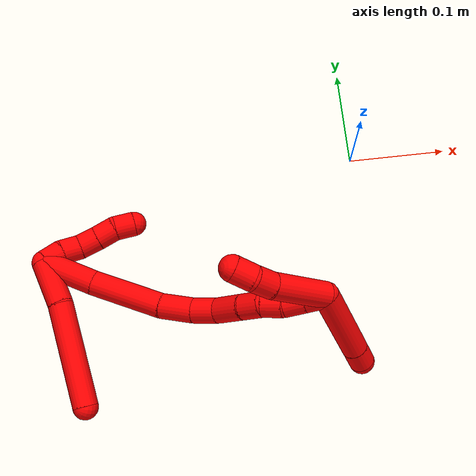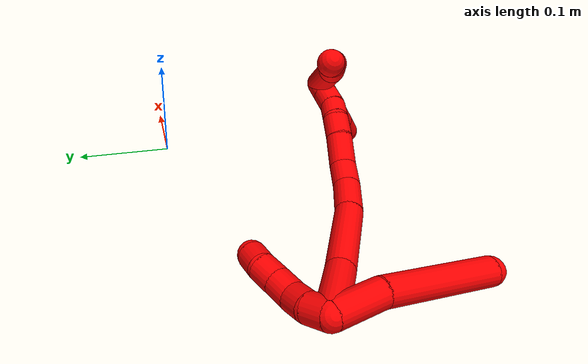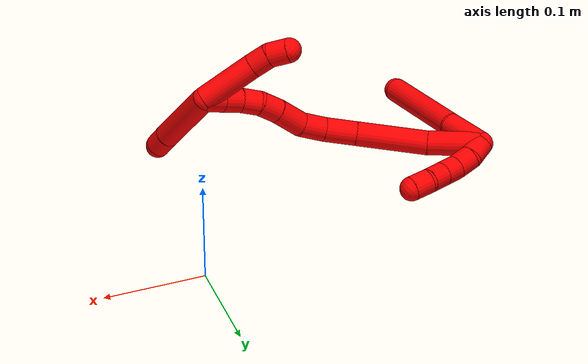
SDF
<sdf version="1.7">
 <world name="default">
  <model name="photoneo_s_sensor">
   <static>1</static>
   <pose>0 0 2 1.57079 1.57079 3.14159</pose>
   <link name="link">
    <inertial><mass>0.1</mass></inertial>
    <sensor name="sensor" type="depth">
     <update_rate>30</update_rate>
     <camera>
      <horizontal_fov>1.22</horizontal_fov>
      <image><width>1920</width><height>1200</height><format>B8G8R8</format></image>
      <clip><near>0.1</near><far>4</far></clip>
      <depth_camera><output>points</output></depth_camera>
     </camera>
     <plugin name="camera_plugin" filename="libgazebo_ros_depth_camera.so">
      <baseline>0.2</baseline>
      <alwaysOn>1</alwaysOn>
      <updateRate>0.0</updateRate>
      <cameraName>camera_ir</cameraName>
      <imageTopicName>/camera/color/image_raw</imageTopicName>
      <cameraInfoTopicName>/camera/color/camera_info</cameraInfoTopicName>
      <depthImageTopicName>/camera/depth/image_raw</depthImageTopicName>
      <depthImageCameraInfoTopicName>/camera/depth/camera_info</depthImageCameraInfoTopicName>
      <pointCloudTopicName>/camera/depth/points</pointCloudTopicName>
      <frameName>fr_optical</frameName>
      <pointCloudCutoff>0.1</pointCloudCutoff>
      <pointCloudCutoffMax>2.0</pointCloudCutoffMax>
      <distortionK1>0</distortionK1>
      <distortionK2>0</distortionK2>
      <distortionK3>0</distortionK3>
      <distortionT1>0</distortionT1>
      <distortionT2>0</distortionT2>
      <CxPrime>0</CxPrime>
      <Cx>0</Cx>
      <Cy>0</Cy>
      <focalLength>0</focalLength>
      <hackBaseline>0</hackBaseline>
     </plugin>
    </sensor>
   </link>
  </model>
  <model name="bin">
   <static>1</static>
   <link name="bottom">
    <collision name="collision-bottom">
     <pose>0 0 -0.01 0 -0 0</pose>
     <geometry><box><size>0.8 0.6 0.02</size></box></geometry>
     <surface>
      <friction><ode><mu>100</mu><mu2>100</mu2></ode></friction>
      <contact><collide_bitmask>65535</collide_bitmask></contact>
     </surface>
    </collision>
   </link>
   <link name="west_wall">
    <collision name="collision-west_wall">
     <pose>-0.41 0 0.1 0 -0 0</pose>
     <geometry><box><size>0.02 0.6 0.2</size></box></geometry>
     <surface>
      <friction><ode><mu>100</mu><mu2>100</mu2></ode></friction>
      <contact><collide_bitmask>65535</collide_bitmask></contact>
     </surface>
    </collision>
   </link>
   <link name="east_wall">
    <collision name="collision-east_wall">
     <pose>0.41 0 0.1 0 -0 0</pose>
     <geometry><box><size>0.02 0.6 0.2</size></box></geometry>
     <surface>
      <friction><ode><mu>100</mu><mu2>100</mu2></ode></friction>
      <contact><collide_bitmask>65535</collide_bitmask></contact>
     </surface>
    </collision>
   </link>
   <link name="south_wall">
    <collision name="collision-south_wall">
     <pose>0 -0.31 0.1 0 -0 0</pose>
     <geometry><box><size>0.8 0.02 0.2</size></box></geometry>
     <surface>
      <friction><ode><mu>100</mu><mu2>100</mu2></ode></friction>
      <contact><collide_bitmask>65535</collide_bitmask></contact>
     </surface>
    </collision>
   </link>
   <link name="north_wall">
    <collision name="collision-north_wall">
     <pose>0 0.31 0.1 0 -0 0</pose>
     <geometry><box><size>0.8 0.02 0.2</size></box></geometry>
     <surface>
      <friction><ode><mu>100</mu><mu2>100</mu2></ode></friction>
      <contact><collide_bitmask>65535</collide_bitmask></contact>
     </surface>
    </collision>
   </link>
  </model>
  <model name="2">
   <static>0</static>
   <link name="2">
    <collision name="collision-cylinder-e_1_2_8">
     <pose>0.01289 -0.018423 -0.005665 1.86912 0.589466 0.779825</pose>
     <geometry><cylinder><radius>0.0125</radius><length>0.046374</length></cylinder></geometry>
     <surface>
      <friction><ode><mu>1.16</mu><mu2>1.16</mu2><slip1>0</slip1><slip2>0</slip2></ode></friction>
      <contact><ode><kp>1e+06</kp><kd>1</kd><max_vel>0</max_vel><min_depth>0.001</min_depth></ode></contact>
     </surface>
    </collision>
    <visual name="visual-cylinder-e_1_2_8">
     <pose>0.01289 -0.018423 -0.005665 1.86912 0.589466 0.779825</pose>
     <geometry><cylinder><radius>0.0125</radius><length>0.046374</length></cylinder></geometry>
     <material><ambient>1 0 0 1</ambient></material>
    </visual>
    <collision name="collision-cylinder-e_2_8_6">
     <pose>0.046839 -0.082874 -0.022398 1.80678 0.418548 0.526507</pose>
     <geometry><cylinder><radius>0.0125</radius><length>0.103626</length></cylinder></geometry>
     <surface>
      <friction><ode><mu>1.16</mu><mu2>1.16</mu2><slip1>0</slip1><slip2>0</slip2></ode></friction>
      <contact><ode><kp>1e+06</kp><kd>1</kd><max_vel>0</max_vel><min_depth>0.001</min_depth></ode></contact>
     </surface>
    </collision>
    <visual name="visual-cylinder-e_2_8_6">
     <pose>0.046839 -0.082874 -0.022398 1.80678 0.418548 0.526507</pose>
     <geometry><cylinder><radius>0.0125</radius><length>0.103626</length></cylinder></geometry>
     <material><ambient>1 0 0 1</ambient></material>
    </visual>
    <collision name="collision-cylinder-e_1_2_9">
     <pose>0.000652 0.006218 -0.007804 -2.46883 0.065203 -0.185998</pose>
     <geometry><cylinder><radius>0.0125</radius><length>0.02</length></cylinder></geometry>
     <surface>
      <friction><ode><mu>1.16</mu><mu2>1.16</mu2><slip1>0</slip1><slip2>0</slip2></ode></friction>
      <contact><ode><kp>1e+06</kp><kd>1</kd><max_vel>0</max_vel><min_depth>0.001</min_depth></ode></contact>
     </surface>
    </collision>
    <visual name="visual-cylinder-e_1_2_9">
     <pose>0.000652 0.006218 -0.007804 -2.46883 0.065203 -0.185998</pose>
     <geometry><cylinder><radius>0.0125</radius><length>0.02</length></cylinder></geometry>
     <material><ambient>1 0 0 1</ambient></material>
    </visual>
    <collision name="collision-cylinder-e_2_9_10">
     <pose>0.004005 0.01654 -0.024319 -2.70128 0.273566 -1.10286</pose>
     <geometry><cylinder><radius>0.0125</radius><length>0.02</length></cylinder></geometry>
     <surface>
      <friction><ode><mu>1.16</mu><mu2>1.16</mu2><slip1>0</slip1><slip2>0</slip2></ode></friction>
      <contact><ode><kp>1e+06</kp><kd>1</kd><max_vel>0</max_vel><min_depth>0.001</min_depth></ode></contact>
     </surface>
    </collision>
    <visual name="visual-cylinder-e_2_9_10">
     <pose>0.004005 0.01654 -0.024319 -2.70128 0.273566 -1.10286</pose>
     <geometry><cylinder><radius>0.0125</radius><length>0.02</length></cylinder></geometry>
     <material><ambient>1 0 0 1</ambient></material>
    </visual>
    <collision name="collision-cylinder-e_3_10_11">
     <pose>0.010986 0.026599 -0.039828 -2.4223 0.442233 -1.07768</pose>
     <geometry><cylinder><radius>0.0125</radius><length>0.02</length></cylinder></geometry>
     <surface>
      <friction><ode><mu>1.16</mu><mu2>1.16</mu2><slip1>0</slip1><slip2>0</slip2></ode></friction>
      <contact><ode><kp>1e+06</kp><kd>1</kd><max_vel>0</max_vel><min_depth>0.001</min_depth></ode></contact>
     </surface>
    </collision>
    <visual name="visual-cylinder-e_3_10_11">
     <pose>0.010986 0.026599 -0.039828 -2.4223 0.442233 -1.07768</pose>
     <geometry><cylinder><radius>0.0125</radius><length>0.02</length></cylinder></geometry>
     <material><ambient>1 0 0 1</ambient></material>
    </visual>
    <collision name="collision-cylinder-e_4_11_12">
     <pose>0.01955 0.038903 -0.053055 -2.36231 0.442764 -1.00277</pose>
     <geometry><cylinder><radius>0.0125</radius><length>0.02</length></cylinder></geometry>
     <surface>
      <friction><ode><mu>1.16</mu><mu2>1.16</mu2><slip1>0</slip1><slip2>0</slip2></ode></friction>
      <contact><ode><kp>1e+06</kp><kd>1</kd><max_vel>0</max_vel><min_depth>0.001</min_depth></ode></contact>
     </surface>
    </collision>
    <visual name="visual-cylinder-e_4_11_12">
     <pose>0.01955 0.038903 -0.053055 -2.36231 0.442764 -1.00277</pose>
     <geometry><cylinder><radius>0.0125</radius><length>0.02</length></cylinder></geometry>
     <material><ambient>1 0 0 1</ambient></material>
    </visual>
    <collision name="collision-cylinder-e_5_12_5">
     <pose>0.028159 0.049148 -0.067614 -2.69488 0.447271 -1.57209</pose>
     <geometry><cylinder><radius>0.0125</radius><length>0.02</length></cylinder></geometry>
     <surface>
      <friction><ode><mu>1.16</mu><mu2>1.16</mu2><slip1>0</slip1><slip2>0</slip2></ode></friction>
      <contact><ode><kp>1e+06</kp><kd>1</kd><max_vel>0</max_vel><min_depth>0.001</min_depth></ode></contact>
     </surface>
    </collision>
    <visual name="visual-cylinder-e_5_12_5">
     <pose>0.028159 0.049148 -0.067614 -2.69488 0.447271 -1.57209</pose>
     <geometry><cylinder><radius>0.0125</radius><length>0.02</length></cylinder></geometry>
     <material><ambient>1 0 0 1</ambient></material>
    </visual>
    <collision name="collision-cylinder-e_1_2_13">
     <pose>0.01806 -0.005789 -0.019329 2.85058 0.730063 2.40926</pose>
     <geometry><cylinder><radius>0.0125</radius><length>0.054159</length></cylinder></geometry>
     <surface>
      <friction><ode><mu>1.16</mu><mu2>1.16</mu2><slip1>0</slip1><slip2>0</slip2></ode></friction>
      <contact><ode><kp>1e+06</kp><kd>1</kd><max_vel>0</max_vel><min_depth>0.001</min_depth></ode></contact>
     </surface>
    </collision>
    <visual name="visual-cylinder-e_1_2_13">
     <pose>0.01806 -0.005789 -0.019329 2.85058 0.730063 2.40926</pose>
     <geometry><cylinder><radius>0.0125</radius><length>0.054159</length></cylinder></geometry>
     <material><ambient>1 0 0 1</ambient></material>
    </visual>
    <collision name="collision-cylinder-e_2_13_14">
     <pose>0.064548 -0.016688 -0.061468 2.92123 0.882662 2.68153</pose>
     <geometry><cylinder><radius>0.0125</radius><length>0.073607</length></cylinder></geometry>
     <surface>
      <friction><ode><mu>1.16</mu><mu2>1.16</mu2><slip1>0</slip1><slip2>0</slip2></ode></friction>
      <contact><ode><kp>1e+06</kp><kd>1</kd><max_vel>0</max_vel><min_depth>0.001</min_depth></ode></contact>
     </surface>
    </collision>
    <visual name="visual-cylinder-e_2_13_14">
     <pose>0.064548 -0.016688 -0.061468 2.92123 0.882662 2.68153</pose>
     <geometry><cylinder><radius>0.0125</radius><length>0.073607</length></cylinder></geometry>
     <material><ambient>1 0 0 1</ambient></material>
    </visual>
    <collision name="collision-cylinder-e_3_14_15">
     <pose>0.106571 -0.021073 -0.094117 -3.06811 0.942954 -2.99765</pose>
     <geometry><cylinder><radius>0.0125</radius><length>0.033598</length></cylinder></geometry>
     <surface>
      <friction><ode><mu>1.16</mu><mu2>1.16</mu2><slip1>0</slip1><slip2>0</slip2></ode></friction>
      <contact><ode><kp>1e+06</kp><kd>1</kd><max_vel>0</max_vel><min_depth>0.001</min_depth></ode></contact>
     </surface>
    </collision>
    <visual name="visual-cylinder-e_3_14_15">
     <pose>0.106571 -0.021073 -0.094117 -3.06811 0.942954 -2.99765</pose>
     <geometry><cylinder><radius>0.0125</radius><length>0.033598</length></cylinder></geometry>
     <material><ambient>1 0 0 1</ambient></material>
    </visual>
    <collision name="collision-cylinder-e_4_15_16">
     <pose>0.131028 -0.018019 -0.110101 -2.77915 1.02685 -2.51321</pose>
     <geometry><cylinder><radius>0.0125</radius><length>0.025386</length></cylinder></geometry>
     <surface>
      <friction><ode><mu>1.16</mu><mu2>1.16</mu2><slip1>0</slip1><slip2>0</slip2></ode></friction>
      <contact><ode><kp>1e+06</kp><kd>1</kd><max_vel>0</max_vel><min_depth>0.001</min_depth></ode></contact>
     </surface>
    </collision>
    <visual name="visual-cylinder-e_4_15_16">
     <pose>0.131028 -0.018019 -0.110101 -2.77915 1.02685 -2.51321</pose>
     <geometry><cylinder><radius>0.0125</radius><length>0.025386</length></cylinder></geometry>
     <material><ambient>1 0 0 1</ambient></material>
    </visual>
    <collision name="collision-cylinder-e_5_16_17">
     <pose>0.156436 -0.011328 -0.118911 -2.11975 1.23281 -1.80288</pose>
     <geometry><cylinder><radius>0.0125</radius><length>0.030839</length></cylinder></geometry>
     <surface>
      <friction><ode><mu>1.16</mu><mu2>1.16</mu2><slip1>0</slip1><slip2>0</slip2></ode></friction>
      <contact><ode><kp>1e+06</kp><kd>1</kd><max_vel>0</max_vel><min_depth>0.001</min_depth></ode></contact>
     </surface>
    </collision>
    <visual name="visual-cylinder-e_5_16_17">
     <pose>0.156436 -0.011328 -0.118911 -2.11975 1.23281 -1.80288</pose>
     <geometry><cylinder><radius>0.0125</radius><length>0.030839</length></cylinder></geometry>
     <material><ambient>1 0 0 1</ambient></material>
    </visual>
    <collision name="collision-cylinder-e_6_17_18">
     <pose>0.180973 -0.003749 -0.124605 -2.32566 1.15447 -1.96971</pose>
     <geometry><cylinder><radius>0.0125</radius><length>0.021845</length></cylinder></geometry>
     <surface>
      <friction><ode><mu>1.16</mu><mu2>1.16</mu2><slip1>0</slip1><slip2>0</slip2></ode></friction>
      <contact><ode><kp>1e+06</kp><kd>1</kd><max_vel>0</max_vel><min_depth>0.001</min_depth></ode></contact>
     </surface>
    </collision>
    <visual name="visual-cylinder-e_6_17_18">
     <pose>0.180973 -0.003749 -0.124605 -2.32566 1.15447 -1.96971</pose>
     <geometry><cylinder><radius>0.0125</radius><length>0.021845</length></cylinder></geometry>
     <material><ambient>1 0 0 1</ambient></material>
    </visual>
    <collision name="collision-cylinder-e_7_18_19">
     <pose>0.19929 0.001146 -0.132999 -2.83854 0.976876 -2.58195</pose>
     <geometry><cylinder><radius>0.0125</radius><length>0.020097</length></cylinder></geometry>
     <surface>
      <friction><ode><mu>1.16</mu><mu2>1.16</mu2><slip1>0</slip1><slip2>0</slip2></ode></friction>
      <contact><ode><kp>1e+06</kp><kd>1</kd><max_vel>0</max_vel><min_depth>0.001</min_depth></ode></contact>
     </surface>
    </collision>
    <visual name="visual-cylinder-e_7_18_19">
     <pose>0.19929 0.001146 -0.132999 -2.83854 0.976876 -2.58195</pose>
     <geometry><cylinder><radius>0.0125</radius><length>0.020097</length></cylinder></geometry>
     <material><ambient>1 0 0 1</ambient></material>
    </visual>
    <collision name="collision-cylinder-e_8_19_20">
     <pose>0.215155 0.00671 -0.144034 -2.54065 0.831544 -1.91772</pose>
     <geometry><cylinder><radius>0.0125</radius><length>0.020399</length></cylinder></geometry>
     <surface>
      <friction><ode><mu>1.16</mu><mu2>1.16</mu2><slip1>0</slip1><slip2>0</slip2></ode></friction>
      <contact><ode><kp>1e+06</kp><kd>1</kd><max_vel>0</max_vel><min_depth>0.001</min_depth></ode></contact>
     </surface>
    </collision>
    <visual name="visual-cylinder-e_8_19_20">
     <pose>0.215155 0.00671 -0.144034 -2.54065 0.831544 -1.91772</pose>
     <geometry><cylinder><radius>0.0125</radius><length>0.020399</length></cylinder></geometry>
     <material><ambient>1 0 0 1</ambient></material>
    </visual>
    <collision name="collision-cylinder-e_9_20_1">
     <pose>0.230149 0.014481 -0.155178 -2.5246 0.837687 -1.89906</pose>
     <geometry><cylinder><radius>0.0125</radius><length>0.020069</length></cylinder></geometry>
     <surface>
      <friction><ode><mu>1.16</mu><mu2>1.16</mu2><slip1>0</slip1><slip2>0</slip2></ode></friction>
      <contact><ode><kp>1e+06</kp><kd>1</kd><max_vel>0</max_vel><min_depth>0.001</min_depth></ode></contact>
     </surface>
    </collision>
    <visual name="visual-cylinder-e_9_20_1">
     <pose>0.230149 0.014481 -0.155178 -2.5246 0.837687 -1.89906</pose>
     <geometry><cylinder><radius>0.0125</radius><length>0.020069</length></cylinder></geometry>
     <material><ambient>1 0 0 1</ambient></material>
    </visual>
    <collision name="collision-cylinder-e_1_1_21">
     <pose>0.232653 -0.005774 -0.191178 2.47244 -0.126596 -0.360676</pose>
     <geometry><cylinder><radius>0.0125</radius><length>0.078457</length></cylinder></geometry>
     <surface>
      <friction><ode><mu>1.16</mu><mu2>1.16</mu2><slip1>0</slip1><slip2>0</slip2></ode></friction>
      <contact><ode><kp>1e+06</kp><kd>1</kd><max_vel>0</max_vel><min_depth>0.001</min_depth></ode></contact>
     </surface>
    </collision>
    <visual name="visual-cylinder-e_1_1_21">
     <pose>0.232653 -0.005774 -0.191178 2.47244 -0.126596 -0.360676</pose>
     <geometry><cylinder><radius>0.0125</radius><length>0.078457</length></cylinder></geometry>
     <material><ambient>1 0 0 1</ambient></material>
    </visual>
    <collision name="collision-cylinder-e_2_21_4">
     <pose>0.226075 -0.036436 -0.230117 2.48234 -0.151426 -0.436414</pose>
     <geometry><cylinder><radius>0.0125</radius><length>0.021543</length></cylinder></geometry>
     <surface>
      <friction><ode><mu>1.16</mu><mu2>1.16</mu2><slip1>0</slip1><slip2>0</slip2></ode></friction>
      <contact><ode><kp>1e+06</kp><kd>1</kd><max_vel>0</max_vel><min_depth>0.001</min_depth></ode></contact>
     </surface>
    </collision>
    <visual name="visual-cylinder-e_2_21_4">
     <pose>0.226075 -0.036436 -0.230117 2.48234 -0.151426 -0.436414</pose>
     <geometry><cylinder><radius>0.0125</radius><length>0.021543</length></cylinder></geometry>
     <material><ambient>1 0 0 1</ambient></material>
    </visual>
    <collision name="collision-cylinder-e_1_1_22">
     <pose>0.232633 0.019221 -0.131613 -0.029426 -0.169492 0.0025</pose>
     <geometry><cylinder><radius>0.0125</radius><length>0.058956</length></cylinder></geometry>
     <surface>
      <friction><ode><mu>1.16</mu><mu2>1.16</mu2><slip1>0</slip1><slip2>0</slip2></ode></friction>
      <contact><ode><kp>1e+06</kp><kd>1</kd><max_vel>0</max_vel><min_depth>0.001</min_depth></ode></contact>
     </surface>
    </collision>
    <visual name="visual-cylinder-e_1_1_22">
     <pose>0.232633 0.019221 -0.131613 -0.029426 -0.169492 0.0025</pose>
     <geometry><cylinder><radius>0.0125</radius><length>0.058956</length></cylinder></geometry>
     <material><ambient>1 0 0 1</ambient></material>
    </visual>
    <collision name="collision-cylinder-e_2_22_23">
     <pose>0.225956 0.022167 -0.09264 -0.207587 -0.166462 0.01738</pose>
     <geometry><cylinder><radius>0.0125</radius><length>0.020579</length></cylinder></geometry>
     <surface>
      <friction><ode><mu>1.16</mu><mu2>1.16</mu2><slip1>0</slip1><slip2>0</slip2></ode></friction>
      <contact><ode><kp>1e+06</kp><kd>1</kd><max_vel>0</max_vel><min_depth>0.001</min_depth></ode></contact>
     </surface>
    </collision>
    <visual name="visual-cylinder-e_2_22_23">
     <pose>0.225956 0.022167 -0.09264 -0.207587 -0.166462 0.01738</pose>
     <geometry><cylinder><radius>0.0125</radius><length>0.020579</length></cylinder></geometry>
     <material><ambient>1 0 0 1</ambient></material>
    </visual>
    <collision name="collision-cylinder-e_3_23_3">
     <pose>0.219727 0.027012 -0.073956 -0.304782 -0.458013 0.071568</pose>
     <geometry><cylinder><radius>0.0125</radius><length>0.020465</length></cylinder></geometry>
     <surface>
      <friction><ode><mu>1.16</mu><mu2>1.16</mu2><slip1>0</slip1><slip2>0</slip2></ode></friction>
      <contact><ode><kp>1e+06</kp><kd>1</kd><max_vel>0</max_vel><min_depth>0.001</min_depth></ode></contact>
     </surface>
    </collision>
    <visual name="visual-cylinder-e_3_23_3">
     <pose>0.219727 0.027012 -0.073956 -0.304782 -0.458013 0.071568</pose>
     <geometry><cylinder><radius>0.0125</radius><length>0.020465</length></cylinder></geometry>
     <material><ambient>1 0 0 1</ambient></material>
    </visual>
    <collision name="collision-sphere-3">
     <pose>0.215202 0.029767 -0.065201 0 -0 0</pose>
     <geometry><sphere><radius>0.0125</radius></sphere></geometry>
     <surface>
      <friction><ode><mu>1.16</mu><mu2>1.16</mu2><slip1>0</slip1><slip2>0</slip2></ode></friction>
      <contact><ode><kp>1e+06</kp><kd>1</kd><max_vel>0</max_vel><min_depth>0.001</min_depth></ode></contact>
     </surface>
    </collision>
    <visual name="visual-sphere-3">
     <pose>0.215202 0.029767 -0.065201 0 -0 0</pose>
     <geometry><sphere><radius>0.0125</radius></sphere></geometry>
     <material><ambient>1 0 0 1</ambient></material>
    </visual>
    <collision name="collision-sphere-23">
     <pose>0.224251 0.024258 -0.082711 0 -0 0</pose>
     <geometry><sphere><radius>0.0125</radius></sphere></geometry>
     <surface>
      <friction><ode><mu>1.16</mu><mu2>1.16</mu2><slip1>0</slip1><slip2>0</slip2></ode></friction>
      <contact><ode><kp>1e+06</kp><kd>1</kd><max_vel>0</max_vel><min_depth>0.001</min_depth></ode></contact>
     </surface>
    </collision>
    <visual name="visual-sphere-23">
     <pose>0.224251 0.024258 -0.082711 0 -0 0</pose>
     <geometry><sphere><radius>0.0125</radius></sphere></geometry>
     <material><ambient>1 0 0 1</ambient></material>
    </visual>
    <collision name="collision-sphere-22">
     <pose>0.227661 0.020075 -0.10257 0 -0 0</pose>
     <geometry><sphere><radius>0.0125</radius></sphere></geometry>
     <surface>
      <friction><ode><mu>1.16</mu><mu2>1.16</mu2><slip1>0</slip1><slip2>0</slip2></ode></friction>
      <contact><ode><kp>1e+06</kp><kd>1</kd><max_vel>0</max_vel><min_depth>0.001</min_depth></ode></contact>
     </surface>
    </collision>
    <visual name="visual-sphere-22">
     <pose>0.227661 0.020075 -0.10257 0 -0 0</pose>
     <geometry><sphere><radius>0.0125</radius></sphere></geometry>
     <material><ambient>1 0 0 1</ambient></material>
    </visual>
    <collision name="collision-sphere-4">
     <pose>0.22445 -0.042958 -0.238534 0 -0 0</pose>
     <geometry><sphere><radius>0.0125</radius></sphere></geometry>
     <surface>
      <friction><ode><mu>1.16</mu><mu2>1.16</mu2><slip1>0</slip1><slip2>0</slip2></ode></friction>
      <contact><ode><kp>1e+06</kp><kd>1</kd><max_vel>0</max_vel><min_depth>0.001</min_depth></ode></contact>
     </surface>
    </collision>
    <visual name="visual-sphere-4">
     <pose>0.22445 -0.042958 -0.238534 0 -0 0</pose>
     <geometry><sphere><radius>0.0125</radius></sphere></geometry>
     <material><ambient>1 0 0 1</ambient></material>
    </visual>
    <collision name="collision-sphere-21">
     <pose>0.2277 -0.029914 -0.2217 0 -0 0</pose>
     <geometry><sphere><radius>0.0125</radius></sphere></geometry>
     <surface>
      <friction><ode><mu>1.16</mu><mu2>1.16</mu2><slip1>0</slip1><slip2>0</slip2></ode></friction>
      <contact><ode><kp>1e+06</kp><kd>1</kd><max_vel>0</max_vel><min_depth>0.001</min_depth></ode></contact>
     </surface>
    </collision>
    <visual name="visual-sphere-21">
     <pose>0.2277 -0.029914 -0.2217 0 -0 0</pose>
     <geometry><sphere><radius>0.0125</radius></sphere></geometry>
     <material><ambient>1 0 0 1</ambient></material>
    </visual>
    <collision name="collision-sphere-1">
     <pose>0.237606 0.018366 -0.160655 0 -0 0</pose>
     <geometry><sphere><radius>0.0125</radius></sphere></geometry>
     <surface>
      <friction><ode><mu>1.16</mu><mu2>1.16</mu2><slip1>0</slip1><slip2>0</slip2></ode></friction>
      <contact><ode><kp>1e+06</kp><kd>1</kd><max_vel>0</max_vel><min_depth>0.001</min_depth></ode></contact>
     </surface>
    </collision>
    <visual name="visual-sphere-1">
     <pose>0.237606 0.018366 -0.160655 0 -0 0</pose>
     <geometry><sphere><radius>0.0125</radius></sphere></geometry>
     <material><ambient>1 0 0 1</ambient></material>
    </visual>
    <collision name="collision-sphere-11">
     <pose>0.015266 0.032553 -0.046627 0 -0 0</pose>
     <geometry><sphere><radius>0.0125</radius></sphere></geometry>
     <surface>
      <friction><ode><mu>1.16</mu><mu2>1.16</mu2><slip1>0</slip1><slip2>0</slip2></ode></friction>
      <contact><ode><kp>1e+06</kp><kd>1</kd><max_vel>0</max_vel><min_depth>0.001</min_depth></ode></contact>
     </surface>
    </collision>
    <visual name="visual-sphere-11">
     <pose>0.015266 0.032553 -0.046627 0 -0 0</pose>
     <geometry><sphere><radius>0.0125</radius></sphere></geometry>
     <material><ambient>1 0 0 1</ambient></material>
    </visual>
    <collision name="collision-sphere-10">
     <pose>0.006706 0.020644 -0.033028 0 -0 0</pose>
     <geometry><sphere><radius>0.0125</radius></sphere></geometry>
     <surface>
      <friction><ode><mu>1.16</mu><mu2>1.16</mu2><slip1>0</slip1><slip2>0</slip2></ode></friction>
      <contact><ode><kp>1e+06</kp><kd>1</kd><max_vel>0</max_vel><min_depth>0.001</min_depth></ode></contact>
     </surface>
    </collision>
    <visual name="visual-sphere-10">
     <pose>0.006706 0.020644 -0.033028 0 -0 0</pose>
     <geometry><sphere><radius>0.0125</radius></sphere></geometry>
     <material><ambient>1 0 0 1</ambient></material>
    </visual>
    <collision name="collision-sphere-6">
     <pose>0.067897 -0.128902 -0.033466 0 -0 0</pose>
     <geometry><sphere><radius>0.0125</radius></sphere></geometry>
     <surface>
      <friction><ode><mu>1.16</mu><mu2>1.16</mu2><slip1>0</slip1><slip2>0</slip2></ode></friction>
      <contact><ode><kp>1e+06</kp><kd>1</kd><max_vel>0</max_vel><min_depth>0.001</min_depth></ode></contact>
     </surface>
    </collision>
    <visual name="visual-sphere-6">
     <pose>0.067897 -0.128902 -0.033466 0 -0 0</pose>
     <geometry><sphere><radius>0.0125</radius></sphere></geometry>
     <material><ambient>1 0 0 1</ambient></material>
    </visual>
    <collision name="collision-sphere-9">
     <pose>0.001303 0.012436 -0.015609 0 -0 0</pose>
     <geometry><sphere><radius>0.0125</radius></sphere></geometry>
     <surface>
      <friction><ode><mu>1.16</mu><mu2>1.16</mu2><slip1>0</slip1><slip2>0</slip2></ode></friction>
      <contact><ode><kp>1e+06</kp><kd>1</kd><max_vel>0</max_vel><min_depth>0.001</min_depth></ode></contact>
     </surface>
    </collision>
    <visual name="visual-sphere-9">
     <pose>0.001303 0.012436 -0.015609 0 -0 0</pose>
     <geometry><sphere><radius>0.0125</radius></sphere></geometry>
     <material><ambient>1 0 0 1</ambient></material>
    </visual>
    <collision name="collision-sphere-2">
     <geometry><sphere><radius>0.0125</radius></sphere></geometry>
     <surface>
      <friction><ode><mu>1.16</mu><mu2>1.16</mu2><slip1>0</slip1><slip2>0</slip2></ode></friction>
      <contact><ode><kp>1e+06</kp><kd>1</kd><max_vel>0</max_vel><min_depth>0.001</min_depth></ode></contact>
     </surface>
    </collision>
    <visual name="visual-sphere-2">
     <geometry><sphere><radius>0.0125</radius></sphere></geometry>
     <material><ambient>1 0 0 1</ambient></material>
    </visual>
    <collision name="collision-sphere-19">
     <pose>0.207618 0.002824 -0.138366 0 -0 0</pose>
     <geometry><sphere><radius>0.0125</radius></sphere></geometry>
     <surface>
      <friction><ode><mu>1.16</mu><mu2>1.16</mu2><slip1>0</slip1><slip2>0</slip2></ode></friction>
      <contact><ode><kp>1e+06</kp><kd>1</kd><max_vel>0</max_vel><min_depth>0.001</min_depth></ode></contact>
     </surface>
    </collision>
    <visual name="visual-sphere-19">
     <pose>0.207618 0.002824 -0.138366 0 -0 0</pose>
     <geometry><sphere><radius>0.0125</radius></sphere></geometry>
     <material><ambient>1 0 0 1</ambient></material>
    </visual>
    <collision name="collision-sphere-8">
     <pose>0.02578 -0.036845 -0.01133 0 -0 0</pose>
     <geometry><sphere><radius>0.0125</radius></sphere></geometry>
     <surface>
      <friction><ode><mu>1.16</mu><mu2>1.16</mu2><slip1>0</slip1><slip2>0</slip2></ode></friction>
      <contact><ode><kp>1e+06</kp><kd>1</kd><max_vel>0</max_vel><min_depth>0.001</min_depth></ode></contact>
     </surface>
    </collision>
    <visual name="visual-sphere-8">
     <pose>0.02578 -0.036845 -0.01133 0 -0 0</pose>
     <geometry><sphere><radius>0.0125</radius></sphere></geometry>
     <material><ambient>1 0 0 1</ambient></material>
    </visual>
    <collision name="collision-sphere-12">
     <pose>0.023834 0.045253 -0.059483 0 -0 0</pose>
     <geometry><sphere><radius>0.0125</radius></sphere></geometry>
     <surface>
      <friction><ode><mu>1.16</mu><mu2>1.16</mu2><slip1>0</slip1><slip2>0</slip2></ode></friction>
      <contact><ode><kp>1e+06</kp><kd>1</kd><max_vel>0</max_vel><min_depth>0.001</min_depth></ode></contact>
     </surface>
    </collision>
    <visual name="visual-sphere-12">
     <pose>0.023834 0.045253 -0.059483 0 -0 0</pose>
     <geometry><sphere><radius>0.0125</radius></sphere></geometry>
     <material><ambient>1 0 0 1</ambient></material>
    </visual>
    <collision name="collision-sphere-5">
     <pose>0.032485 0.053043 -0.075746 0 -0 0</pose>
     <geometry><sphere><radius>0.0125</radius></sphere></geometry>
     <surface>
      <friction><ode><mu>1.16</mu><mu2>1.16</mu2><slip1>0</slip1><slip2>0</slip2></ode></friction>
      <contact><ode><kp>1e+06</kp><kd>1</kd><max_vel>0</max_vel><min_depth>0.001</min_depth></ode></contact>
     </surface>
    </collision>
    <visual name="visual-sphere-5">
     <pose>0.032485 0.053043 -0.075746 0 -0 0</pose>
     <geometry><sphere><radius>0.0125</radius></sphere></geometry>
     <material><ambient>1 0 0 1</ambient></material>
    </visual>
    <collision name="collision-sphere-13">
     <pose>0.03612 -0.011579 -0.038659 0 -0 0</pose>
     <geometry><sphere><radius>0.0125</radius></sphere></geometry>
     <surface>
      <friction><ode><mu>1.16</mu><mu2>1.16</mu2><slip1>0</slip1><slip2>0</slip2></ode></friction>
      <contact><ode><kp>1e+06</kp><kd>1</kd><max_vel>0</max_vel><min_depth>0.001</min_depth></ode></contact>
     </surface>
    </collision>
    <visual name="visual-sphere-13">
     <pose>0.03612 -0.011579 -0.038659 0 -0 0</pose>
     <geometry><sphere><radius>0.0125</radius></sphere></geometry>
     <material><ambient>1 0 0 1</ambient></material>
    </visual>
    <collision name="collision-sphere-14">
     <pose>0.092976 -0.021797 -0.084276 0 -0 0</pose>
     <geometry><sphere><radius>0.0125</radius></sphere></geometry>
     <surface>
      <friction><ode><mu>1.16</mu><mu2>1.16</mu2><slip1>0</slip1><slip2>0</slip2></ode></friction>
      <contact><ode><kp>1e+06</kp><kd>1</kd><max_vel>0</max_vel><min_depth>0.001</min_depth></ode></contact>
     </surface>
    </collision>
    <visual name="visual-sphere-14">
     <pose>0.092976 -0.021797 -0.084276 0 -0 0</pose>
     <geometry><sphere><radius>0.0125</radius></sphere></geometry>
     <material><ambient>1 0 0 1</ambient></material>
    </visual>
    <collision name="collision-sphere-15">
     <pose>0.120167 -0.020348 -0.103958 0 -0 0</pose>
     <geometry><sphere><radius>0.0125</radius></sphere></geometry>
     <surface>
      <friction><ode><mu>1.16</mu><mu2>1.16</mu2><slip1>0</slip1><slip2>0</slip2></ode></friction>
      <contact><ode><kp>1e+06</kp><kd>1</kd><max_vel>0</max_vel><min_depth>0.001</min_depth></ode></contact>
     </surface>
    </collision>
    <visual name="visual-sphere-15">
     <pose>0.120167 -0.020348 -0.103958 0 -0 0</pose>
     <geometry><sphere><radius>0.0125</radius></sphere></geometry>
     <material><ambient>1 0 0 1</ambient></material>
    </visual>
    <collision name="collision-sphere-16">
     <pose>0.141889 -0.01569 -0.116243 0 -0 0</pose>
     <geometry><sphere><radius>0.0125</radius></sphere></geometry>
     <surface>
      <friction><ode><mu>1.16</mu><mu2>1.16</mu2><slip1>0</slip1><slip2>0</slip2></ode></friction>
      <contact><ode><kp>1e+06</kp><kd>1</kd><max_vel>0</max_vel><min_depth>0.001</min_depth></ode></contact>
     </surface>
    </collision>
    <visual name="visual-sphere-16">
     <pose>0.141889 -0.01569 -0.116243 0 -0 0</pose>
     <geometry><sphere><radius>0.0125</radius></sphere></geometry>
     <material><ambient>1 0 0 1</ambient></material>
    </visual>
    <collision name="collision-sphere-17">
     <pose>0.170984 -0.006967 -0.121579 0 -0 0</pose>
     <geometry><sphere><radius>0.0125</radius></sphere></geometry>
     <surface>
      <friction><ode><mu>1.16</mu><mu2>1.16</mu2><slip1>0</slip1><slip2>0</slip2></ode></friction>
      <contact><ode><kp>1e+06</kp><kd>1</kd><max_vel>0</max_vel><min_depth>0.001</min_depth></ode></contact>
     </surface>
    </collision>
    <visual name="visual-sphere-17">
     <pose>0.170984 -0.006967 -0.121579 0 -0 0</pose>
     <geometry><sphere><radius>0.0125</radius></sphere></geometry>
     <material><ambient>1 0 0 1</ambient></material>
    </visual>
    <collision name="collision-sphere-18">
     <pose>0.190963 -0.000532 -0.127632 0 -0 0</pose>
     <geometry><sphere><radius>0.0125</radius></sphere></geometry>
     <surface>
      <friction><ode><mu>1.16</mu><mu2>1.16</mu2><slip1>0</slip1><slip2>0</slip2></ode></friction>
      <contact><ode><kp>1e+06</kp><kd>1</kd><max_vel>0</max_vel><min_depth>0.001</min_depth></ode></contact>
     </surface>
    </collision>
    <visual name="visual-sphere-18">
     <pose>0.190963 -0.000532 -0.127632 0 -0 0</pose>
     <geometry><sphere><radius>0.0125</radius></sphere></geometry>
     <material><ambient>1 0 0 1</ambient></material>
    </visual>
    <collision name="collision-sphere-20">
     <pose>0.222693 0.010595 -0.149702 0 -0 0</pose>
     <geometry><sphere><radius>0.0125</radius></sphere></geometry>
     <surface>
      <friction><ode><mu>1.16</mu><mu2>1.16</mu2><slip1>0</slip1><slip2>0</slip2></ode></friction>
      <contact><ode><kp>1e+06</kp><kd>1</kd><max_vel>0</max_vel><min_depth>0.001</min_depth></ode></contact>
     </surface>
    </collision>
    <visual name="visual-sphere-20">
     <pose>0.222693 0.010595 -0.149702 0 -0 0</pose>
     <geometry><sphere><radius>0.0125</radius></sphere></geometry>
     <material><ambient>1 0 0 1</ambient></material>
    </visual>
    <inertial>
     <pose>0.116174 -0.011304 -0.08562 0 -0 0</pose>
     <mass>0.75</mass>
     <inertia><ixx>0.000181</ixx><ixy>0</ixy><ixz>0</ixz><iyy>8.6e-05</iyy><iyz>0</iyz><izz>1.2e-05</izz></inertia>
    </inertial>
   </link>
   <pose>-0.32419 -0.083563 0.023824 0.420922 -0.770814 -0.587463</pose>
  </model>
 </world>
</sdf>
